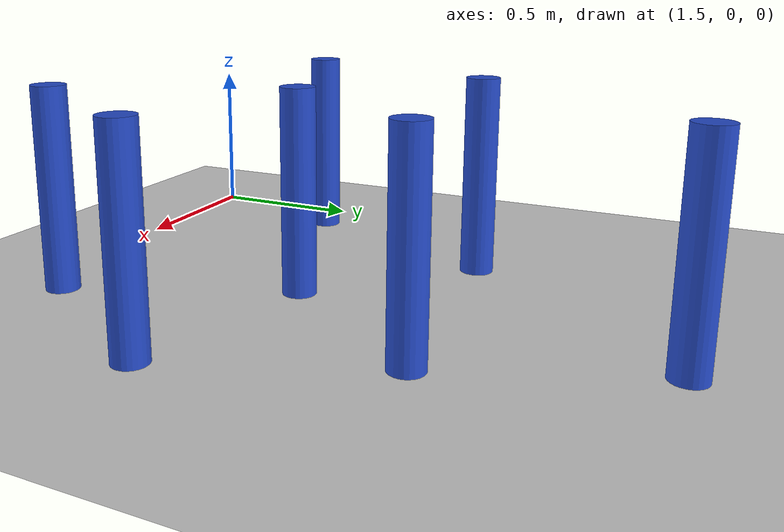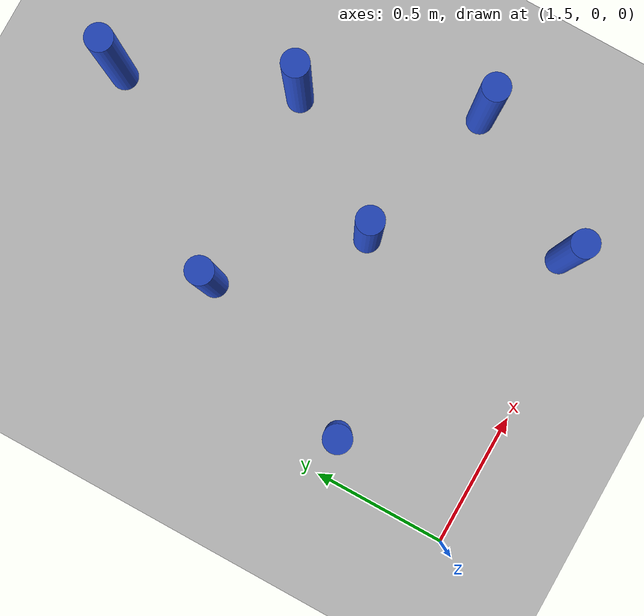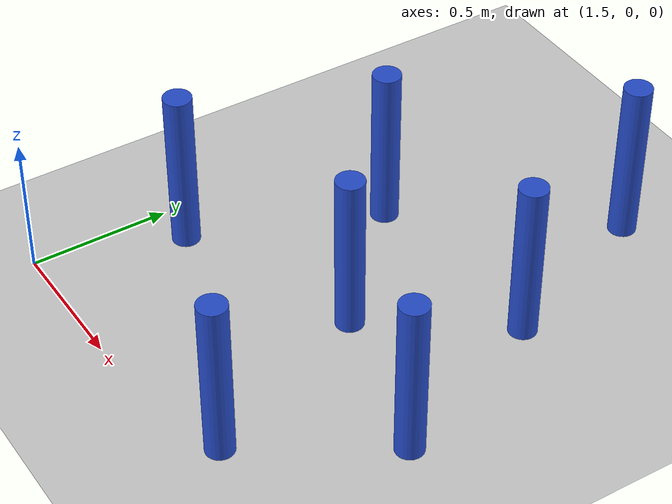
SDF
<sdf version="1.6">
 <world name="default">
  <model name="ground_plane">
   <static>1</static>
   <link name="link">
    <collision name="collision">
     <geometry><plane><normal>0 0 1</normal><size>100 100</size></plane></geometry>
     <surface><friction><ode><mu>100</mu><mu2>50</mu2></ode></friction></surface>
    </collision>
    <visual name="visual">
     <cast_shadows>0</cast_shadows>
     <geometry><plane><normal>0 0 1</normal><size>100 100</size></plane></geometry>
     <material>
      <ambient>1.0 1.0 1.0 1.0</ambient>
      <diffuse>0.8 0.8 0.8 1.0</diffuse>
      <specular>0.01 0.01 0.01 1.000000</specular>
     </material>
    </visual>
   </link>
  </model>
  <model name="pole_obstacle119">
   <static>true</static>
   <pose>1.65755842974 0.504248588028 2.88873142074e-08 -9.90536689799e-09 4.6021994899e-07 -1.20965994959e-07</pose>
   <link name="link">
    <pose>0 0 0.3 0 -0 0</pose>
    <inertial>
     <mass>1</mass>
     <inertia><ixx>0.145833</ixx><ixy>0</ixy><ixz>0</ixz><iyy>0.145833</iyy><iyz>0</iyz><izz>0.125</izz></inertia>
    </inertial>
    <collision name="collision">
     <geometry><cylinder><radius>0.05</radius><length>.6</length></cylinder></geometry>
    </collision>
    <visual name="visual">
     <geometry><cylinder><radius>0.05</radius><length>.6</length></cylinder></geometry>
     <material>
      <script><name>Gazebo/Blue</name><uri>file://media/materials/scripts/gazebo.material</uri></script>
     </material>
    </visual>
   </link>
  </model>
  <model name="pole_obstacle121">
   <static>true</static>
   <pose>2.65310656348 1.21262609922 2.88873142074e-08 -9.90536689395e-09 4.60219949e-07 -1.20965994953e-07</pose>
   <link name="link">
    <pose>0 0 0.3 0 -0 0</pose>
    <inertial>
     <mass>1</mass>
     <inertia><ixx>0.145833</ixx><ixy>0</ixy><ixz>0</ixz><iyy>0.145833</iyy><iyz>0</iyz><izz>0.125</izz></inertia>
    </inertial>
    <collision name="collision">
     <geometry><cylinder><radius>0.05</radius><length>.6</length></cylinder></geometry>
    </collision>
    <visual name="visual">
     <geometry><cylinder><radius>0.05</radius><length>.6</length></cylinder></geometry>
     <material>
      <script><name>Gazebo/Blue</name><uri>file://media/materials/scripts/gazebo.material</uri></script>
     </material>
    </visual>
   </link>
  </model>
  <model name="pole_obstacle122">
   <static>true</static>
   <pose>2.59131585483 0.109405834646 2.88873142074e-08 -9.90536691979e-09 4.60219948939e-07 -1.20965994984e-07</pose>
   <link name="link">
    <pose>0 0 0.3 0 -0 0</pose>
    <inertial>
     <mass>1</mass>
     <inertia><ixx>0.145833</ixx><ixy>0</ixy><ixz>0</ixz><iyy>0.145833</iyy><iyz>0</iyz><izz>0.125</izz></inertia>
    </inertial>
    <collision name="collision">
     <geometry><cylinder><radius>0.05</radius><length>.6</length></cylinder></geometry>
    </collision>
    <visual name="visual">
     <geometry><cylinder><radius>0.05</radius><length>.6</length></cylinder></geometry>
     <material>
      <script><name>Gazebo/Blue</name><uri>file://media/materials/scripts/gazebo.material</uri></script>
     </material>
    </visual>
   </link>
  </model>
  <model name="pole_obstacle145">
   <static>true</static>
   <pose>2.90043295615 0.603558059964 2.88873142074e-08 -9.90536689285e-09 4.60219949002e-07 -1.20965994953e-07</pose>
   <link name="link">
    <pose>0 0 0.3 0 -0 0</pose>
    <inertial>
     <mass>1</mass>
     <inertia><ixx>0.145833</ixx><ixy>0</ixy><ixz>0</ixz><iyy>0.145833</iyy><iyz>0</iyz><izz>0.125</izz></inertia>
    </inertial>
    <collision name="collision">
     <geometry><cylinder><radius>0.05</radius><length>.6</length></cylinder></geometry>
    </collision>
    <visual name="visual">
     <geometry><cylinder><radius>0.05</radius><length>.6</length></cylinder></geometry>
     <material>
      <script><name>Gazebo/Blue</name><uri>file://media/materials/scripts/gazebo.material</uri></script>
     </material>
    </visual>
   </link>
  </model>
  <model name="pole_obstacle146">
   <static>true</static>
   <pose>1.91426054527 1.15429620357 2.88873142074e-08 -9.90536689672e-09 4.60219948993e-07 -1.20965994959e-07</pose>
   <link name="link">
    <pose>0 0 0.3 0 -0 0</pose>
    <inertial>
     <mass>1</mass>
     <inertia><ixx>0.145833</ixx><ixy>0</ixy><ixz>0</ixz><iyy>0.145833</iyy><iyz>0</iyz><izz>0.125</izz></inertia>
    </inertial>
    <collision name="collision">
     <geometry><cylinder><radius>0.05</radius><length>.6</length></cylinder></geometry>
    </collision>
    <visual name="visual">
     <geometry><cylinder><radius>0.05</radius><length>.6</length></cylinder></geometry>
     <material>
      <script><name>Gazebo/Blue</name><uri>file://media/materials/scripts/gazebo.material</uri></script>
     </material>
    </visual>
   </link>
  </model>
  <model name="pole_obstacle176">
   <static>true</static>
   <pose>2.41773125954 1.81174552178 2.88873142074e-08 -9.90536689395e-09 4.60219949e-07 -1.20965994953e-07</pose>
   <link name="link">
    <pose>0 0 0.3 0 -0 0</pose>
    <inertial>
     <mass>1</mass>
     <inertia><ixx>0.145833</ixx><ixy>0</ixy><ixz>0</ixz><iyy>0.145833</iyy><iyz>0</iyz><izz>0.125</izz></inertia>
    </inertial>
    <collision name="collision">
     <geometry><cylinder><radius>0.05</radius><length>.6</length></cylinder></geometry>
    </collision>
    <visual name="visual">
     <geometry><cylinder><radius>0.05</radius><length>.6</length></cylinder></geometry>
     <material>
      <script><name>Gazebo/Blue</name><uri>file://media/materials/scripts/gazebo.material</uri></script>
     </material>
    </visual>
   </link>
  </model>
  <model name="pole_obstacle229">
   <static>true</static>
   <pose>2.322339046 0.751604114589 2.88873142074e-08 -9.90536689285e-09 4.60219949002e-07 -1.20965994953e-07</pose>
   <link name="link">
    <pose>0 0 0.3 0 -0 0</pose>
    <inertial>
     <mass>1</mass>
     <inertia><ixx>0.145833</ixx><ixy>0</ixy><ixz>0</ixz><iyy>0.145833</iyy><iyz>0</iyz><izz>0.125</izz></inertia>
    </inertial>
    <collision name="collision">
     <geometry><cylinder><radius>0.05</radius><length>.6</length></cylinder></geometry>
    </collision>
    <visual name="visual">
     <geometry><cylinder><radius>0.05</radius><length>.6</length></cylinder></geometry>
     <material>
      <script><name>Gazebo/Blue</name><uri>file://media/materials/scripts/gazebo.material</uri></script>
     </material>
    </visual>
   </link>
  </model>
 </world>
</sdf>
